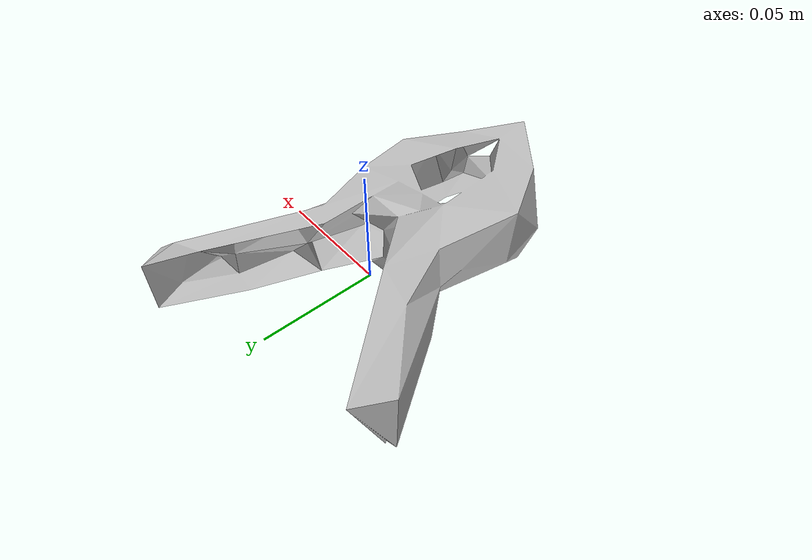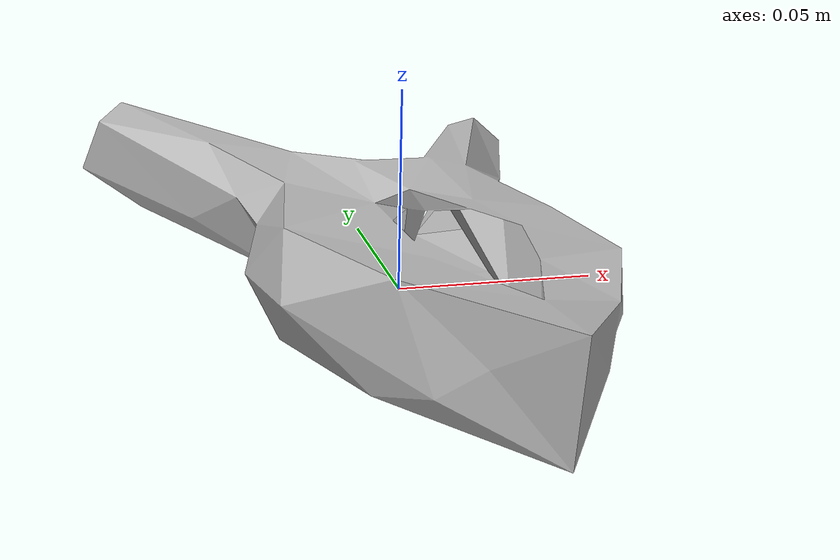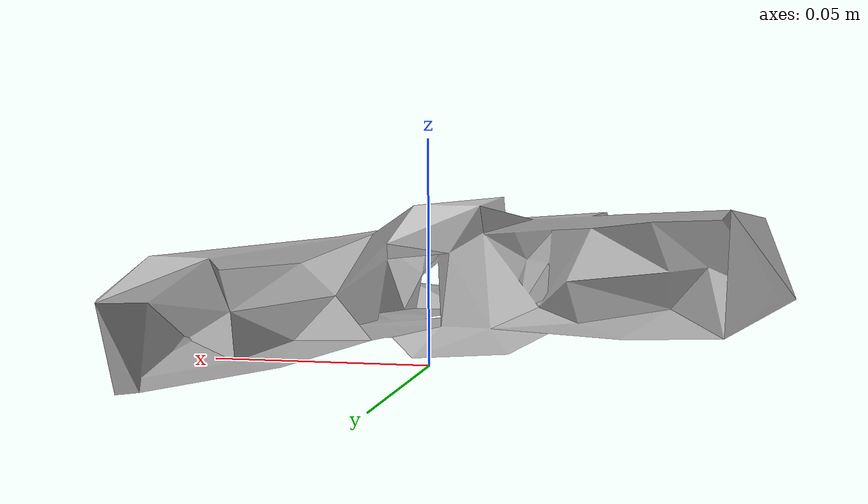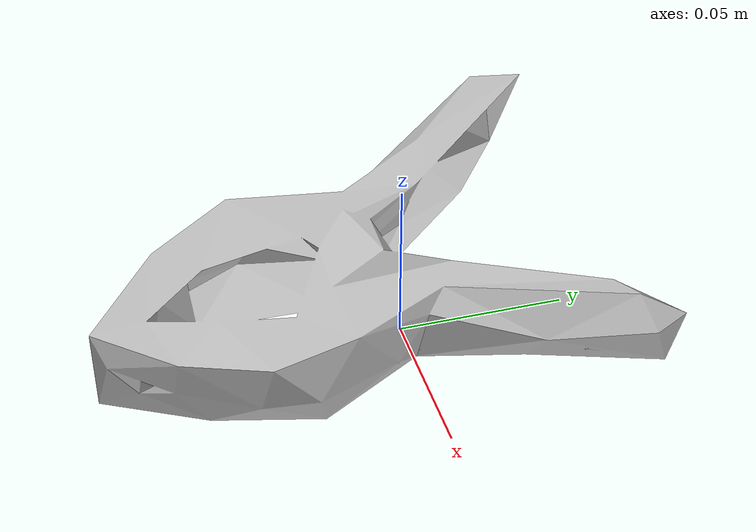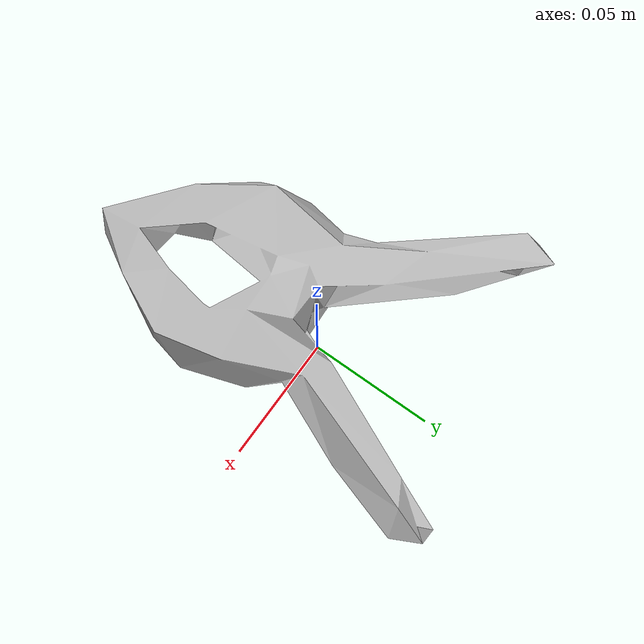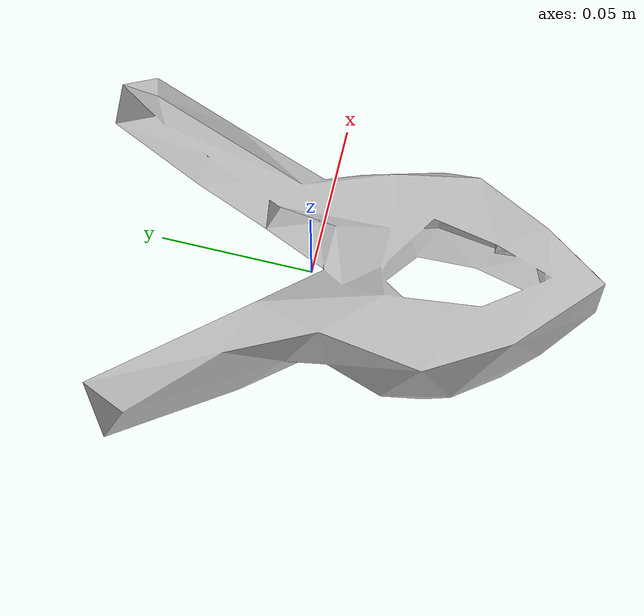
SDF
<?xml version='1.0'?>
<sdf version="1.4">
  <model name="051_large_clamp">
    <static>false</static>
    <link name="link">
      <inertial>
        <pose>-0.006306829841022702 0.0011397865130195269 0.01882434688789363 -2.097330704785221 1.4592266650572185 2.7660570034814254</pose>
        <mass>0.0376518625377347</mass>
        <inertia>
          <ixx>8.941595809624688e-05</ixx>
          <ixy>5.724026548113829e-22</ixy>
          <ixz>7.323839447286635e-21</ixz>
          <iyy>6.609197053222543e-05</iyy>
          <iyz>-1.9516236937436847e-21</iyz>
          <izz>2.841513745868769e-05</izz>
        </inertia>
      </inertial>
      <collision name="collision">
        <geometry>
          <mesh>
            <!-- Use a downsampled mesh for collisions -->
            <uri>model:///051_large_clamp/051_large_clamp_250_collision.stl</uri>
	        </mesh>
        </geometry>
        <surface>
      </surface>
      </collision>
      <visual name="visual">
        <geometry>
          <mesh>
            <uri>model:///051_large_clamp/textured.obj</uri>
	        </mesh>
        </geometry>
        <material>
          <script>
            <uri>model:///051_large_clamp/051_large_clamp.material</uri>
            <name>051_large_clamp</name>
          </script>
        </material>
      </visual>
    </link>
  </model>
</sdf>
